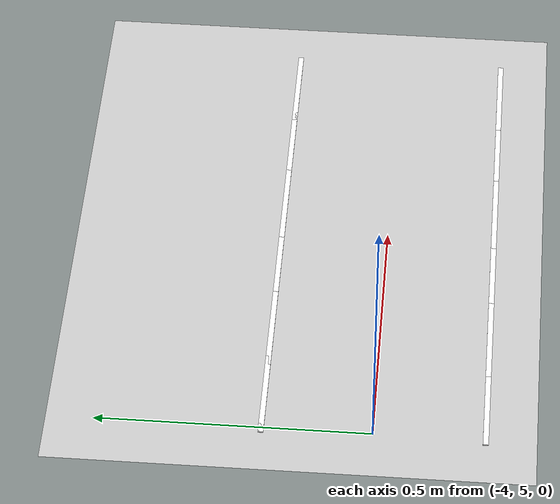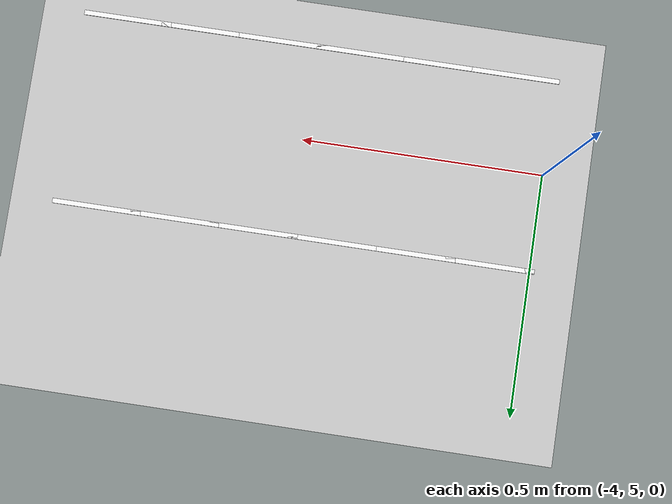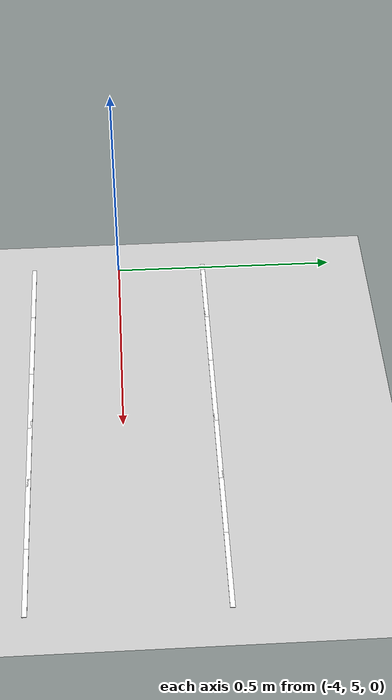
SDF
<sdf version="1.7">
 <world name="default">
  <model name="ground_plane">
   <static>1</static>
   <link name="link">
    <collision name="collision">
     <geometry><plane><normal>0 0 1</normal><size>100 100</size></plane></geometry>
     <surface>
      <contact><collide_bitmask>65535</collide_bitmask></contact>
      <friction><ode><mu>100</mu><mu2>50</mu2></ode></friction>
     </surface>
    </collision>
    <visual name="visual">
     <cast_shadows>0</cast_shadows>
     <geometry><plane><normal>0 0 1</normal><size>100 100</size></plane></geometry>
     <material>
      <script><uri>file://media/materials/scripts/gazebo.material</uri><name>Gazebo/Grey</name></script>
     </material>
    </visual>
   </link>
  </model>
  <model name="lane_line_left_243">
   <static>1</static>
   <link name="link">
    <pose>0 0 -0.004 0 -0 0</pose>
    <visual name="visual">
     <geometry><box><size>0.1833 0.01 0.01</size></box></geometry>
     <material><ambient>1 1 1 1</ambient><diffuse>1 1 1 1</diffuse></material>
    </visual>
    <collision name="collision"><geometry><box><size>0.1833 0.01 0.01</size></box></geometry></collision>
   </link>
   <pose>-3.10204 4.8 0 0 -0 3.14159</pose>
  </model>
  <model name="lane_line_right_243">
   <static>1</static>
   <link name="link">
    <pose>0 0 -0.004 0 -0 0</pose>
    <visual name="visual">
     <geometry><box><size>0.1833 0.01 0.01</size></box></geometry>
     <material><ambient>1 1 1 1</ambient><diffuse>1 1 1 1</diffuse></material>
    </visual>
    <collision name="collision"><geometry><box><size>0.1833 0.01 0.01</size></box></geometry></collision>
   </link>
   <pose>-3.10204 5.2 0 0 -0 3.14159</pose>
  </model>
  <model name="lane_line_left_244">
   <static>1</static>
   <link name="link">
    <pose>0 0 -0.004 0 -0 0</pose>
    <visual name="visual">
     <geometry><box><size>0.1833 0.01 0.01</size></box></geometry>
     <material><ambient>1 1 1 1</ambient><diffuse>1 1 1 1</diffuse></material>
    </visual>
    <collision name="collision"><geometry><box><size>0.1833 0.01 0.01</size></box></geometry></collision>
   </link>
   <pose>-3.26531 4.8 0 0 -0 3.14159</pose>
  </model>
  <model name="lane_line_right_244">
   <static>1</static>
   <link name="link">
    <pose>0 0 -0.004 0 -0 0</pose>
    <visual name="visual">
     <geometry><box><size>0.1833 0.01 0.01</size></box></geometry>
     <material><ambient>1 1 1 1</ambient><diffuse>1 1 1 1</diffuse></material>
    </visual>
    <collision name="collision"><geometry><box><size>0.1833 0.01 0.01</size></box></geometry></collision>
   </link>
   <pose>-3.26531 5.2 0 0 -0 3.14159</pose>
  </model>
  <model name="lane_line_left_245">
   <static>1</static>
   <link name="link">
    <pose>0 0 -0.004 0 -0 0</pose>
    <visual name="visual">
     <geometry><box><size>0.1833 0.01 0.01</size></box></geometry>
     <material><ambient>1 1 1 1</ambient><diffuse>1 1 1 1</diffuse></material>
    </visual>
    <collision name="collision"><geometry><box><size>0.1833 0.01 0.01</size></box></geometry></collision>
   </link>
   <pose>-3.42857 4.8 0 0 -0 3.14159</pose>
  </model>
  <model name="lane_line_right_245">
   <static>1</static>
   <link name="link">
    <pose>0 0 -0.004 0 -0 0</pose>
    <visual name="visual">
     <geometry><box><size>0.1833 0.01 0.01</size></box></geometry>
     <material><ambient>1 1 1 1</ambient><diffuse>1 1 1 1</diffuse></material>
    </visual>
    <collision name="collision"><geometry><box><size>0.1833 0.01 0.01</size></box></geometry></collision>
   </link>
   <pose>-3.42857 5.2 0 0 -0 3.14159</pose>
  </model>
  <model name="lane_line_left_246">
   <static>1</static>
   <link name="link">
    <pose>0 0 -0.004 0 -0 0</pose>
    <visual name="visual">
     <geometry><box><size>0.1833 0.01 0.01</size></box></geometry>
     <material><ambient>1 1 1 1</ambient><diffuse>1 1 1 1</diffuse></material>
    </visual>
    <collision name="collision"><geometry><box><size>0.1833 0.01 0.01</size></box></geometry></collision>
   </link>
   <pose>-3.59184 4.8 0 0 -0 3.14159</pose>
  </model>
  <model name="lane_line_right_246">
   <static>1</static>
   <link name="link">
    <pose>0 0 -0.004 0 -0 0</pose>
    <visual name="visual">
     <geometry><box><size>0.1833 0.01 0.01</size></box></geometry>
     <material><ambient>1 1 1 1</ambient><diffuse>1 1 1 1</diffuse></material>
    </visual>
    <collision name="collision"><geometry><box><size>0.1833 0.01 0.01</size></box></geometry></collision>
   </link>
   <pose>-3.59184 5.2 0 0 -0 3.14159</pose>
  </model>
  <model name="lane_line_left_247">
   <static>1</static>
   <link name="link">
    <pose>0 0 -0.004 0 -0 0</pose>
    <visual name="visual">
     <geometry><box><size>0.1833 0.01 0.01</size></box></geometry>
     <material><ambient>1 1 1 1</ambient><diffuse>1 1 1 1</diffuse></material>
    </visual>
    <collision name="collision"><geometry><box><size>0.1833 0.01 0.01</size></box></geometry></collision>
   </link>
   <pose>-3.7551 4.8 0 0 -0 3.14159</pose>
  </model>
  <model name="lane_line_right_247">
   <static>1</static>
   <link name="link">
    <pose>0 0 -0.004 0 -0 0</pose>
    <visual name="visual">
     <geometry><box><size>0.1833 0.01 0.01</size></box></geometry>
     <material><ambient>1 1 1 1</ambient><diffuse>1 1 1 1</diffuse></material>
    </visual>
    <collision name="collision"><geometry><box><size>0.1833 0.01 0.01</size></box></geometry></collision>
   </link>
   <pose>-3.7551 5.2 0 0 -0 3.14159</pose>
  </model>
  <model name="lane_line_left_248">
   <static>1</static>
   <link name="link">
    <pose>0 0 -0.004 0 -0 0</pose>
    <visual name="visual">
     <geometry><box><size>0.1833 0.01 0.01</size></box></geometry>
     <material><ambient>1 1 1 1</ambient><diffuse>1 1 1 1</diffuse></material>
    </visual>
    <collision name="collision"><geometry><box><size>0.1833 0.01 0.01</size></box></geometry></collision>
   </link>
   <pose>-3.91837 4.8 0 0 -0 3.14159</pose>
  </model>
  <model name="lane_line_right_248">
   <static>1</static>
   <link name="link">
    <pose>0 0 -0.004 0 -0 0</pose>
    <visual name="visual">
     <geometry><box><size>0.1833 0.01 0.01</size></box></geometry>
     <material><ambient>1 1 1 1</ambient><diffuse>1 1 1 1</diffuse></material>
    </visual>
    <collision name="collision"><geometry><box><size>0.1833 0.01 0.01</size></box></geometry></collision>
   </link>
   <pose>-3.91837 5.2 0 0 -0 3.14159</pose>
  </model>
  <model name="lane_line_left_249">
   <static>1</static>
   <link name="link">
    <pose>0 0 -0.004 0 -0 0</pose>
    <visual name="visual">
     <geometry><box><size>0.02 0.01 0.01</size></box></geometry>
     <material><ambient>1 1 1 1</ambient><diffuse>1 1 1 1</diffuse></material>
    </visual>
    <collision name="collision"><geometry><box><size>0.02 0.01 0.01</size></box></geometry></collision>
   </link>
   <pose>-4 5.2 0 0 -0 0</pose>
  </model>
 </world>
</sdf>
